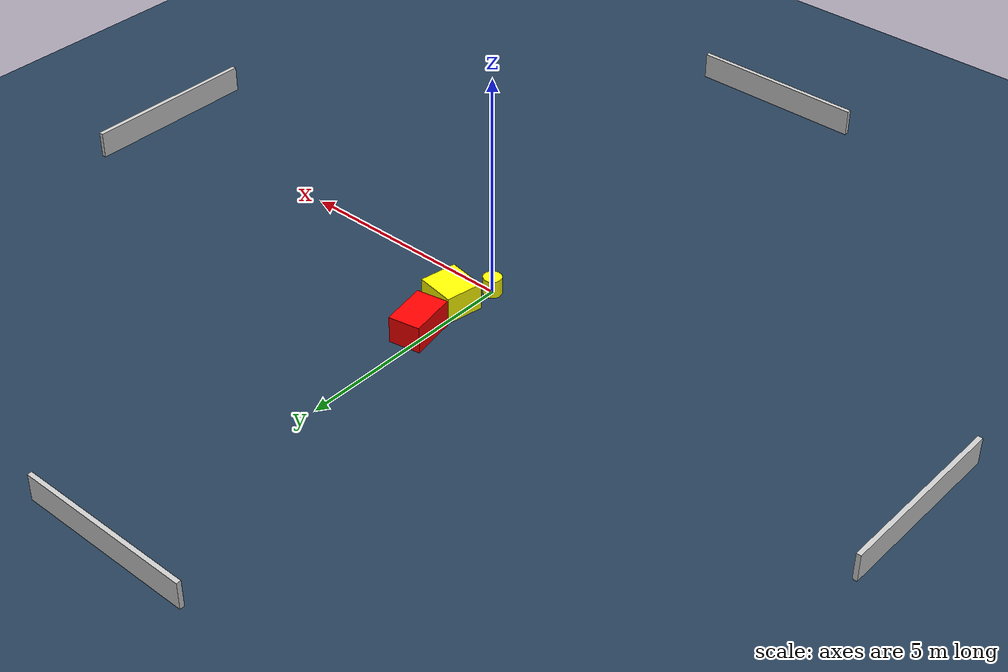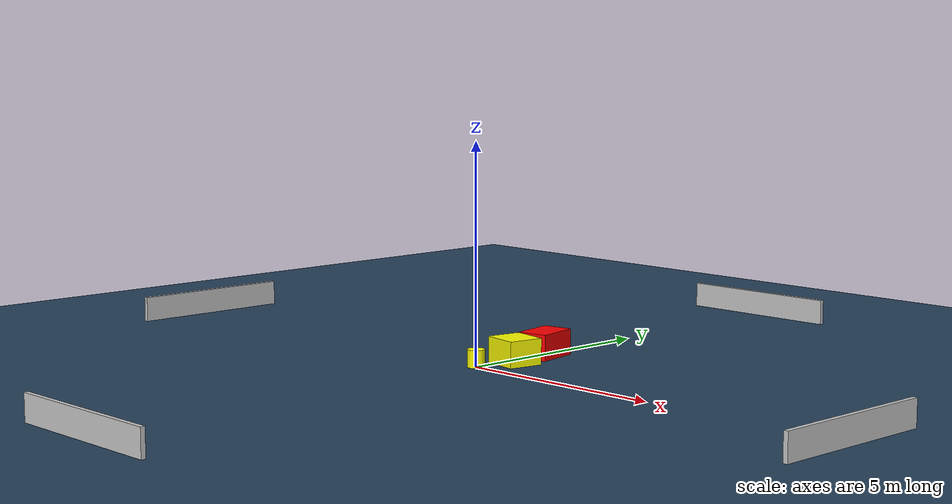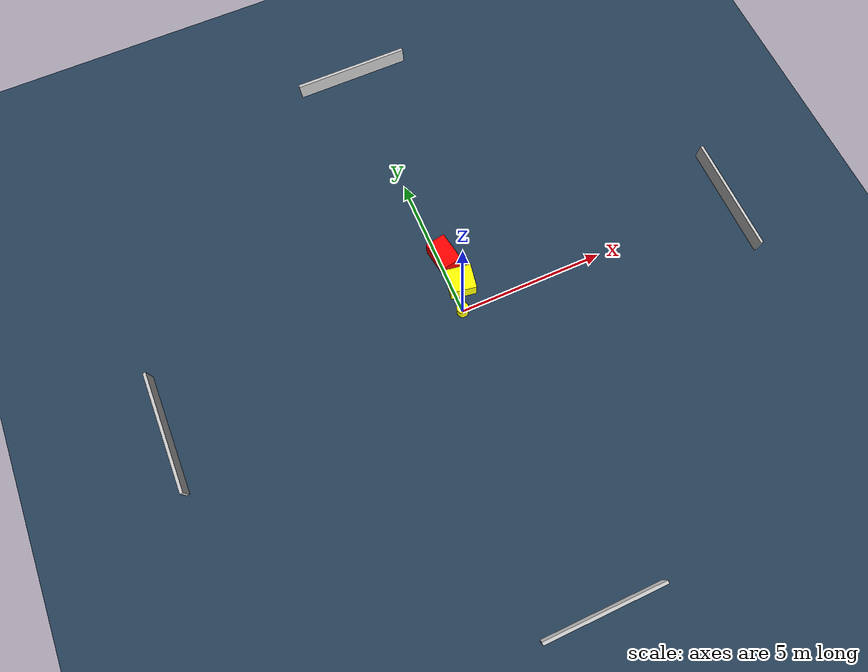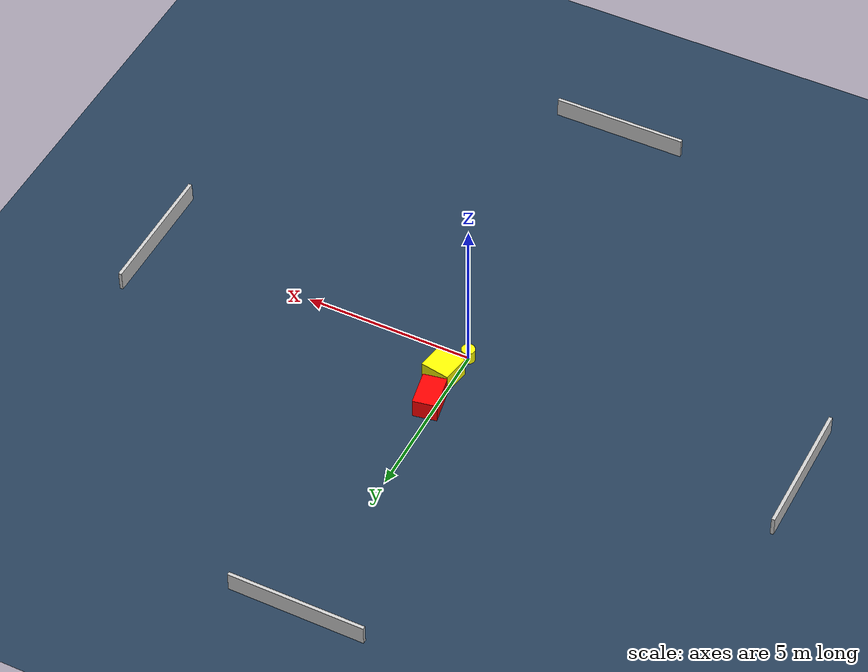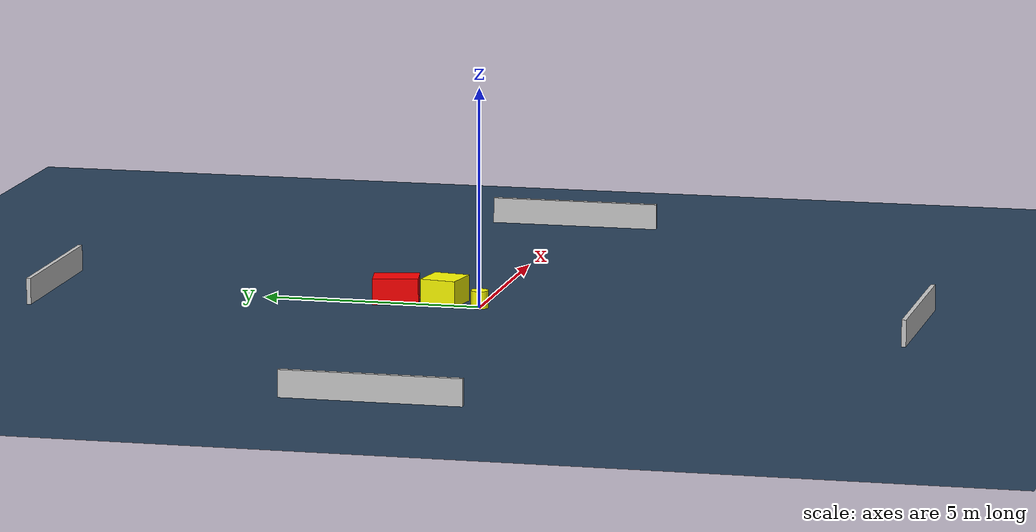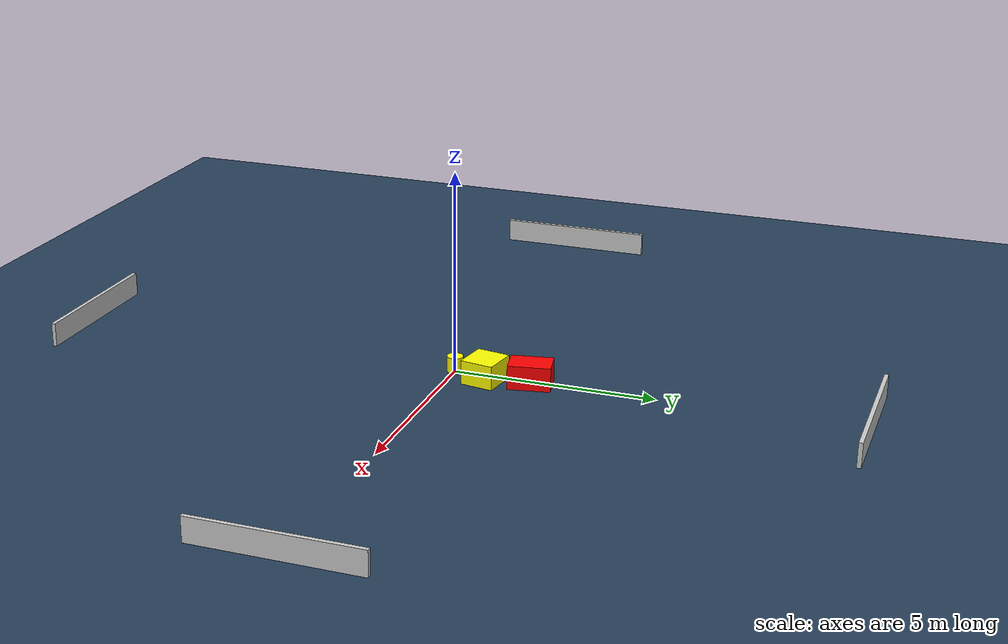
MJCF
<?xml version="1.0" ?>
<mujoco model="generated_environment">
  <option timestep="0.01" integrator="RK4" cone="elliptic"/>
  <default>
    <geom density="1"/>
  </default>
  <asset>
    <texture builtin="gradient" height="3072" name="skybox" rgb1="0.3 0.5 0.7" rgb2="0 0 0" type="skybox" width="512"/>
    <texture builtin="checker" height="300" name="groundplane" rgb1="0.2 0.3 0.4" rgb2="0.1 0.2 0.3" type="2d" width="300"/>
    <material name="groundplane" reflectance="0.2" texrepeat="5 5" texture="groundplane"/>
  </asset>
  <worldbody>
    <light dir="0 0 -1" directional="true" pos="0 0 1.5"/>
    <geom condim="3" friction="0.5 0.005 0.001" material="groundplane" name="floor" pos="0 0 0" size="0 0 0.05" type="plane"/>
    <body name="walls">
      <geom name="wall_1" condim="4" pos="-10.0 0.0 0.3" rgba="0.800000011920929 0.800000011920929 0.800000011920929 1.0" size="0.05 2.0 0.3" type="box"/>
      <geom name="wall_2" condim="4" pos="10.0 0.0 0.3" rgba="0.800000011920929 0.800000011920929 0.800000011920929 1.0" size="0.05 2.0 0.3" type="box"/>
      <geom name="wall_3" condim="4" pos="0.0 -10.0 0.3" rgba="0.800000011920929 0.800000011920929 0.800000011920929 1.0" size="2.0 0.05 0.3" type="box"/>
      <geom name="wall_4" condim="4" pos="0.0 10.0 0.3" rgba="0.800000011920929 0.800000011920929 0.800000011920929 1.0" size="2.0 0.05 0.3" type="box"/>
    </body>
    <body name="robot">
      <joint name="joint_x" type="slide" pos="0 0 0" axis="1 0 0"/>
      <joint name="joint_y" type="slide" pos="0 0 0" axis="0 1 0"/>
      <geom name="robot" type="cylinder" pos="0.0 0.0 0.2" size="0.2 0.2 0.0" mass="5.0" friction="1.0 0.005 0.0001" condim="4" rgba="1.0 1.0 0.0 1.0"/>
    </body>
    <body name="obstacle_1_movable">
      <geom name="obstacle_1_movable" condim="4" pos="0.3240598234722908 0.8842020945920611 0.3" euler="0 0 350.42911739081126" friction="0.0 0.005 0.001" rgba="1.0 1.0 0.0 1.0" size="0.43804280326144274 0.414836933000163 0.3" type="box" mass="0.1"/>
      <joint type="free"/>
    </body>
    <body name="obstacle_2_static">
      <geom name="obstacle_2_static" condim="4" pos="0.18679001422499977 1.9854200323733393 0.3" euler="0 0 190.43402871269714" friction="0.0 0.005 0.001" rgba="1.0 0.0 0.0 1.0" size="0.35159874127460095 0.5199100334592262 0.3" type="box"/>
    </body>
  </worldbody>
  <actuator>
    <motor name="actuator_x" joint="joint_x" gear="1" ctrlrange="-1 1"/>
    <motor name="actuator_y" joint="joint_y" gear="1" ctrlrange="-1 1"/>
  </actuator>
</mujoco>
